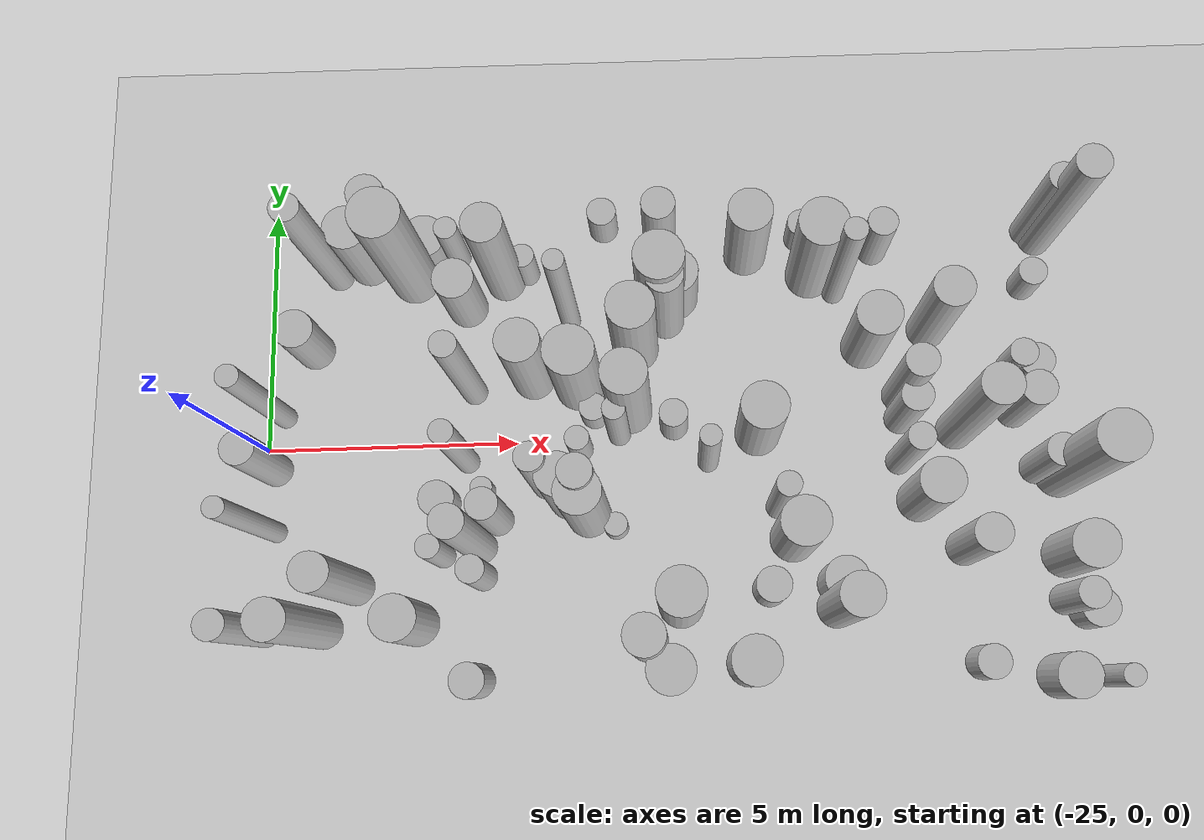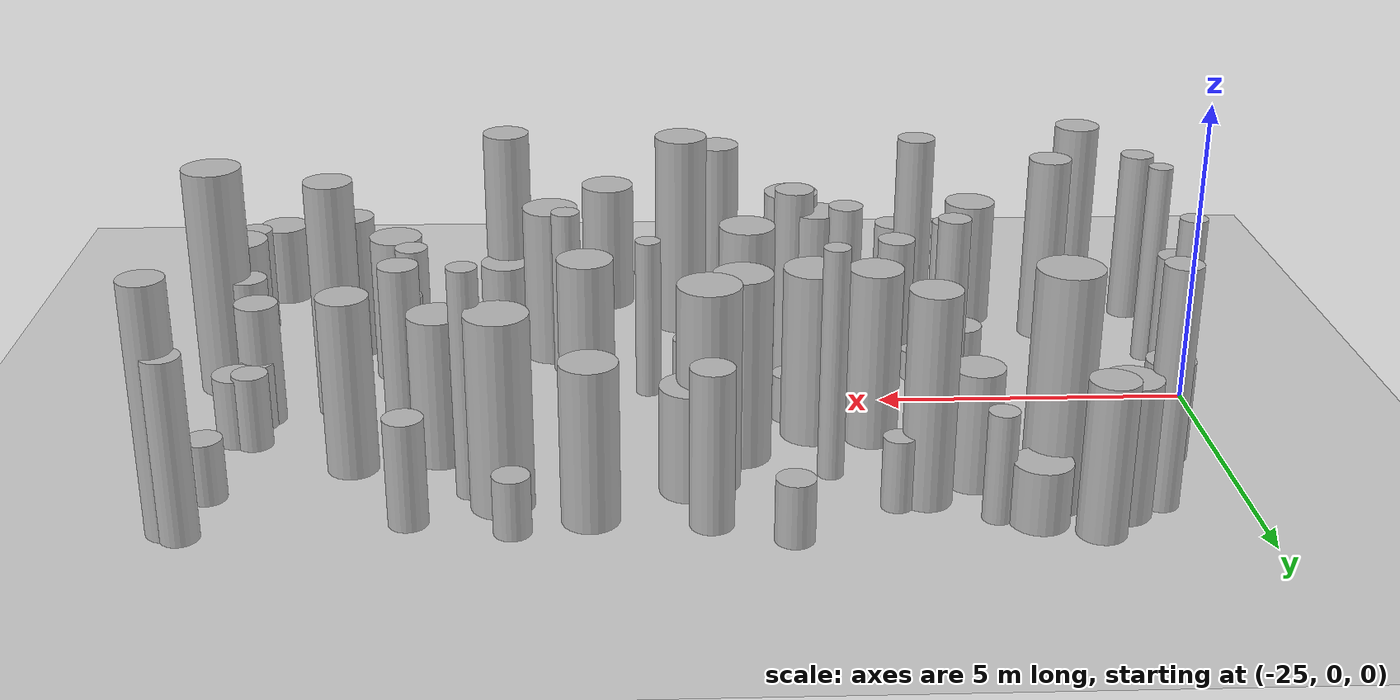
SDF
<sdf version="1.4">
 <world name="default">
  <include><uri>model://ground_plane</uri></include>
  <include><uri>model://sun</uri></include>
  <model name="forest">
   <static>true</static>
   <link name="cylinder0">
    <pose>-12.389913493122123 -0.6164857760160567 1.2789422149600733 0 0 0</pose>
    <visual name="visual">
     <geometry>
      <cylinder><radius>0.2640215659879026</radius><length>2.5578844299201466</length></cylinder>
     </geometry>
    </visual>
    <collision name="collision">
     <geometry>
      <cylinder><radius>0.2640215659879026</radius><length>2.5578844299201466</length></cylinder>
     </geometry>
     <max_contacts>0</max_contacts>
    </collision>
   </link>
   <link name="cylinder1">
    <pose>-8.918453066813743 -3.6858028048861415 0.4585606323043887 0 0 0</pose>
    <visual name="visual">
     <geometry>
      <cylinder><radius>0.37176183712964606</radius><length>0.9171212646087774</length></cylinder>
     </geometry>
    </visual>
    <collision name="collision">
     <geometry>
      <cylinder><radius>0.37176183712964606</radius><length>0.9171212646087774</length></cylinder>
     </geometry>
     <max_contacts>0</max_contacts>
    </collision>
   </link>
   <link name="cylinder2">
    <pose>-18.978339106760433 -1.155977682333047 1.4584447334064259 0 0 0</pose>
    <visual name="visual">
     <geometry>
      <cylinder><radius>0.41375714241988626</radius><length>2.9168894668128518</length></cylinder>
     </geometry>
    </visual>
    <collision name="collision">
     <geometry>
      <cylinder><radius>0.41375714241988626</radius><length>2.9168894668128518</length></cylinder>
     </geometry>
     <max_contacts>0</max_contacts>
    </collision>
   </link>
   <link name="cylinder7">
    <pose>-16.761811264655652 2.964869043372569 0.8588262211649531 0 0 0</pose>
    <visual name="visual">
     <geometry>
      <cylinder><radius>0.46347730381025604</radius><length>1.7176524423299062</length></cylinder>
     </geometry>
    </visual>
    <collision name="collision">
     <geometry>
      <cylinder><radius>0.46347730381025604</radius><length>1.7176524423299062</length></cylinder>
     </geometry>
     <max_contacts>0</max_contacts>
    </collision>
   </link>
   <link name="cylinder8">
    <pose>-9.667703603242755 -0.8389615528529255 0.9886777490439089 0 0 0</pose>
    <visual name="visual">
     <geometry>
      <cylinder><radius>0.3212503952877882</radius><length>1.9773554980878179</length></cylinder>
     </geometry>
    </visual>
    <collision name="collision">
     <geometry>
      <cylinder><radius>0.3212503952877882</radius><length>1.9773554980878179</length></cylinder>
     </geometry>
     <max_contacts>0</max_contacts>
    </collision>
   </link>
   <link name="cylinder9">
    <pose>-23.665607546349648 3.6394062842845454 1.9011852466170696 0 0 0</pose>
    <visual name="visual">
     <geometry>
      <cylinder><radius>0.28236321037003426</radius><length>3.802370493234139</length></cylinder>
     </geometry>
    </visual>
    <collision name="collision">
     <geometry>
      <cylinder><radius>0.28236321037003426</radius><length>3.802370493234139</length></cylinder>
     </geometry>
     <max_contacts>0</max_contacts>
    </collision>
   </link>
   <link name="cylinder10">
    <pose>-21.005215314367547 -0.3415815577288628 1.4994202685417108 0 0 0</pose>
    <visual name="visual">
     <geometry>
      <cylinder><radius>0.23004852379547625</radius><length>2.9988405370834217</length></cylinder>
     </geometry>
    </visual>
    <collision name="collision">
     <geometry>
      <cylinder><radius>0.23004852379547625</radius><length>2.9988405370834217</length></cylinder>
     </geometry>
     <max_contacts>0</max_contacts>
    </collision>
   </link>
   <link name="cylinder12">
    <pose>-17.061415783212418 -4.5929543059022855 1.036291618223426 0 0 0</pose>
    <visual name="visual">
     <geometry>
      <cylinder><radius>0.4613177867696143</radius><length>2.072583236446852</length></cylinder>
     </geometry>
    </visual>
    <collision name="collision">
     <geometry>
      <cylinder><radius>0.4613177867696143</radius><length>2.072583236446852</length></cylinder>
     </geometry>
     <max_contacts>0</max_contacts>
    </collision>
   </link>
   <link name="cylinder15">
    <pose>-21.503227747067015 -1.1797395255265641 0.41484440350514384 0 0 0</pose>
    <visual name="visual">
     <geometry>
      <cylinder><radius>0.35250127038315193</radius><length>0.8296888070102877</length></cylinder>
     </geometry>
    </visual>
    <collision name="collision">
     <geometry>
      <cylinder><radius>0.35250127038315193</radius><length>0.8296888070102877</length></cylinder>
     </geometry>
     <max_contacts>0</max_contacts>
    </collision>
   </link>
   <link name="cylinder25">
    <pose>-21.779436015058096 4.115555588904252 0.491929286126674 0 0 0</pose>
    <visual name="visual">
     <geometry>
      <cylinder><radius>0.4418668476225953</radius><length>0.983858572253348</length></cylinder>
     </geometry>
    </visual>
    <collision name="collision">
     <geometry>
      <cylinder><radius>0.4418668476225953</radius><length>0.983858572253348</length></cylinder>
     </geometry>
     <max_contacts>0</max_contacts>
    </collision>
   </link>
   <link name="cylinder26">
    <pose>-18.742497188077866 -0.1580609581002843 0.5917921316678002 0 0 0</pose>
    <visual name="visual">
     <geometry>
      <cylinder><radius>0.2432426239660913</radius><length>1.1835842633356004</length></cylinder>
     </geometry>
    </visual>
    <collision name="collision">
     <geometry>
      <cylinder><radius>0.2432426239660913</radius><length>1.1835842633356004</length></cylinder>
     </geometry>
     <max_contacts>0</max_contacts>
    </collision>
   </link>
   <link name="cylinder30">
    <pose>-9.5906438474116 -4.92725049409366 0.6952648383239067 0 0 0</pose>
    <visual name="visual">
     <geometry>
      <cylinder><radius>0.4296117749040066</radius><length>1.3905296766478135</length></cylinder>
     </geometry>
    </visual>
    <collision name="collision">
     <geometry>
      <cylinder><radius>0.4296117749040066</radius><length>1.3905296766478135</length></cylinder>
     </geometry>
     <max_contacts>0</max_contacts>
    </collision>
   </link>
   <link name="cylinder34">
    <pose>-20.23513384234424 3.4125626318916957 1.6848206293768455 0 0 0</pose>
    <visual name="visual">
     <geometry>
      <cylinder><radius>0.3905785535304223</radius><length>3.369641258753691</length></cylinder>
     </geometry>
    </visual>
    <collision name="collision">
     <geometry>
      <cylinder><radius>0.3905785535304223</radius><length>3.369641258753691</length></cylinder>
     </geometry>
     <max_contacts>0</max_contacts>
    </collision>
   </link>
   <link name="cylinder36">
    <pose>-9.331027541366948 -3.4661809195663063 0.9193993759060639 0 0 0</pose>
    <visual name="visual">
     <geometry>
      <cylinder><radius>0.3020906780574557</radius><length>1.8387987518121278</length></cylinder>
     </geometry>
    </visual>
    <collision name="collision">
     <geometry>
      <cylinder><radius>0.3020906780574557</radius><length>1.8387987518121278</length></cylinder>
     </geometry>
     <max_contacts>0</max_contacts>
    </collision>
   </link>
   <link name="cylinder40">
    <pose>-18.599666781171827 -1.5019799856270377 1.5660669158370695 0 0 0</pose>
    <visual name="visual">
     <geometry>
      <cylinder><radius>0.44107084303791805</radius><length>3.132133831674139</length></cylinder>
     </geometry>
    </visual>
    <collision name="collision">
     <geometry>
      <cylinder><radius>0.44107084303791805</radius><length>3.132133831674139</length></cylinder>
     </geometry>
     <max_contacts>0</max_contacts>
    </collision>
   </link>
   <link name="cylinder44">
    <pose>-13.990156403138032 3.3505663086298014 1.5324832089418257 0 0 0</pose>
    <visual name="visual">
     <geometry>
      <cylinder><radius>0.4783362634145502</radius><length>3.0649664178836513</length></cylinder>
     </geometry>
    </visual>
    <collision name="collision">
     <geometry>
      <cylinder><radius>0.4783362634145502</radius><length>3.0649664178836513</length></cylinder>
     </geometry>
     <max_contacts>0</max_contacts>
    </collision>
   </link>
   <link name="cylinder45">
    <pose>-9.241455031519507 3.98643197940304 1.9590375152031578 0 0 0</pose>
    <visual name="visual">
     <geometry>
      <cylinder><radius>0.3376911724527055</radius><length>3.9180750304063157</length></cylinder>
     </geometry>
    </visual>
    <collision name="collision">
     <geometry>
      <cylinder><radius>0.3376911724527055</radius><length>3.9180750304063157</length></cylinder>
     </geometry>
     <max_contacts>0</max_contacts>
    </collision>
   </link>
   <link name="cylinder47">
    <pose>-23.813632729153195 -3.5745698049681685 1.7897251551725513 0 0 0</pose>
    <visual name="visual">
     <geometry>
      <cylinder><radius>0.37790018455302027</radius><length>3.5794503103451025</length></cylinder>
     </geometry>
    </visual>
    <collision name="collision">
     <geometry>
      <cylinder><radius>0.37790018455302027</radius><length>3.5794503103451025</length></cylinder>
     </geometry>
     <max_contacts>0</max_contacts>
    </collision>
   </link>
   <link name="cylinder48">
    <pose>-18.751007569529488 1.1397680272205015 1.408767534734153 0 0 0</pose>
    <visual name="visual">
     <geometry>
      <cylinder><radius>0.4893086770583015</radius><length>2.817535069468306</length></cylinder>
     </geometry>
    </visual>
    <collision name="collision">
     <geometry>
      <cylinder><radius>0.4893086770583015</radius><length>2.817535069468306</length></cylinder>
     </geometry>
     <max_contacts>0</max_contacts>
    </collision>
   </link>
   <link name="cylinder51">
    <pose>-18.627392296456655 -1.1775298522866207 1.6448311978323424 0 0 0</pose>
    <visual name="visual">
     <geometry>
      <cylinder><radius>0.3240482186157975</radius><length>3.289662395664685</length></cylinder>
     </geometry>
    </visual>
    <collision name="collision">
     <geometry>
      <cylinder><radius>0.3240482186157975</radius><length>3.289662395664685</length></cylinder>
     </geometry>
     <max_contacts>0</max_contacts>
    </collision>
   </link>
   <link name="cylinder59">
    <pose>-18.447583648574795 0.5410527574651125 0.3898114863726291 0 0 0</pose>
    <visual name="visual">
     <geometry>
      <cylinder><radius>0.2815132785927279</radius><length>0.7796229727452582</length></cylinder>
     </geometry>
    </visual>
    <collision name="collision">
     <geometry>
      <cylinder><radius>0.2815132785927279</radius><length>0.7796229727452582</length></cylinder>
     </geometry>
     <max_contacts>0</max_contacts>
    </collision>
   </link>
   <link name="cylinder62">
    <pose>-10.014591206246791 0.34362689399675084 1.0119945949591194 0 0 0</pose>
    <visual name="visual">
     <geometry>
      <cylinder><radius>0.34261399047036256</radius><length>2.0239891899182387</length></cylinder>
     </geometry>
    </visual>
    <collision name="collision">
     <geometry>
      <cylinder><radius>0.34261399047036256</radius><length>2.0239891899182387</length></cylinder>
     </geometry>
     <max_contacts>0</max_contacts>
    </collision>
   </link>
   <link name="cylinder63">
    <pose>-17.050070490331038 2.754622565069349 1.6094043688284676 0 0 0</pose>
    <visual name="visual">
     <geometry>
      <cylinder><radius>0.4843710857543946</radius><length>3.218808737656935</length></cylinder>
     </geometry>
    </visual>
    <collision name="collision">
     <geometry>
      <cylinder><radius>0.4843710857543946</radius><length>3.218808737656935</length></cylinder>
     </geometry>
     <max_contacts>0</max_contacts>
    </collision>
   </link>
   <link name="cylinder64">
    <pose>-18.91274499381118 2.5448361576163467 1.8453397021543532 0 0 0</pose>
    <visual name="visual">
     <geometry>
      <cylinder><radius>0.202912345821084</radius><length>3.6906794043087063</length></cylinder>
     </geometry>
    </visual>
    <collision name="collision">
     <geometry>
      <cylinder><radius>0.202912345821084</radius><length>3.6906794043087063</length></cylinder>
     </geometry>
     <max_contacts>0</max_contacts>
    </collision>
   </link>
   <link name="cylinder66">
    <pose>-9.741574770871807 1.1029626674739523 0.5774175398298544 0 0 0</pose>
    <visual name="visual">
     <geometry>
      <cylinder><radius>0.34965548821532144</radius><length>1.1548350796597089</length></cylinder>
     </geometry>
    </visual>
    <collision name="collision">
     <geometry>
      <cylinder><radius>0.34965548821532144</radius><length>1.1548350796597089</length></cylinder>
     </geometry>
     <max_contacts>0</max_contacts>
    </collision>
   </link>
   <link name="cylinder72">
    <pose>-18.06195932043643 -1.763841210127942 0.2832955071213952 0 0 0</pose>
    <visual name="visual">
     <geometry>
      <cylinder><radius>0.23667020677883968</radius><length>0.5665910142427903</length></cylinder>
     </geometry>
    </visual>
    <collision name="collision">
     <geometry>
      <cylinder><radius>0.23667020677883968</radius><length>0.5665910142427903</length></cylinder>
     </geometry>
     <max_contacts>0</max_contacts>
    </collision>
   </link>
   <link name="cylinder73">
    <pose>-20.80408796542286 -4.6534139892818605 0.6997406246825335 0 0 0</pose>
    <visual name="visual">
     <geometry>
      <cylinder><radius>0.3352127121600865</radius><length>1.399481249365067</length></cylinder>
     </geometry>
    </visual>
    <collision name="collision">
     <geometry>
      <cylinder><radius>0.3352127121600865</radius><length>1.399481249365067</length></cylinder>
     </geometry>
     <max_contacts>0</max_contacts>
    </collision>
   </link>
   <link name="cylinder74">
    <pose>-11.044432887734168 -4.625905560917079 0.5063726596747875 0 0 0</pose>
    <visual name="visual">
     <geometry>
      <cylinder><radius>0.3305488003278912</radius><length>1.012745319349575</length></cylinder>
     </geometry>
    </visual>
    <collision name="collision">
     <geometry>
      <cylinder><radius>0.3305488003278912</radius><length>1.012745319349575</length></cylinder>
     </geometry>
     <max_contacts>0</max_contacts>
    </collision>
   </link>
   <link name="cylinder79">
    <pose>-11.219268246103598 -0.016604221676278286 1.954229122500143 0 0 0</pose>
    <visual name="visual">
     <geometry>
      <cylinder><radius>0.38682470265564367</radius><length>3.908458245000286</length></cylinder>
     </geometry>
    </visual>
    <collision name="collision">
     <geometry>
      <cylinder><radius>0.38682470265564367</radius><length>3.908458245000286</length></cylinder>
     </geometry>
     <max_contacts>0</max_contacts>
    </collision>
   </link>
   <link name="cylinder80">
    <pose>-15.539824815004266 -4.48462235163303 1.1319483732159765 0 0 0</pose>
    <visual name="visual">
     <geometry>
      <cylinder><radius>0.4620812686708832</radius><length>2.263896746431953</length></cylinder>
     </geometry>
    </visual>
    <collision name="collision">
     <geometry>
      <cylinder><radius>0.4620812686708832</radius><length>2.263896746431953</length></cylinder>
     </geometry>
     <max_contacts>0</max_contacts>
    </collision>
   </link>
   <link name="cylinder82">
    <pose>-11.223384397252717 -2.387317778088386 1.2332614786788882 0 0 0</pose>
    <visual name="visual">
     <geometry>
      <cylinder><radius>0.3580137096092616</radius><length>2.4665229573577765</length></cylinder>
     </geometry>
    </visual>
    <collision name="collision">
     <geometry>
      <cylinder><radius>0.3580137096092616</radius><length>2.4665229573577765</length></cylinder>
     </geometry>
     <max_contacts>0</max_contacts>
    </collision>
   </link>
   <link name="cylinder88">
    <pose>-16.834322077344794 -3.3356405022034785 1.7658164591394727 0 0 0</pose>
    <visual name="visual">
     <geometry>
      <cylinder><radius>0.4456423610995147</radius><length>3.5316329182789454</length></cylinder>
     </geometry>
    </visual>
    <collision name="collision">
     <geometry>
      <cylinder><radius>0.4456423610995147</radius><length>3.5316329182789454</length></cylinder>
     </geometry>
     <max_contacts>0</max_contacts>
    </collision>
   </link>
   <link name="cylinder90">
    <pose>-11.646165178721102 2.101917380404873 1.4219258324744182 0 0 0</pose>
    <visual name="visual">
     <geometry>
      <cylinder><radius>0.39653035291882005</radius><length>2.8438516649488363</length></cylinder>
     </geometry>
    </visual>
    <collision name="collision">
     <geometry>
      <cylinder><radius>0.39653035291882005</radius><length>2.8438516649488363</length></cylinder>
     </geometry>
     <max_contacts>0</max_contacts>
    </collision>
   </link>
   <link name="cylinder103">
    <pose>-16.965795445407483 2.471064937426103 1.4862025501083211 0 0 0</pose>
    <visual name="visual">
     <geometry>
      <cylinder><radius>0.3699369237325959</radius><length>2.9724051002166423</length></cylinder>
     </geometry>
    </visual>
    <collision name="collision">
     <geometry>
      <cylinder><radius>0.3699369237325959</radius><length>2.9724051002166423</length></cylinder>
     </geometry>
     <max_contacts>0</max_contacts>
    </collision>
   </link>
   <link name="cylinder104">
    <pose>-12.968705064059522 1.7769551957202196 1.2016777135223666 0 0 0</pose>
    <visual name="visual">
     <geometry>
      <cylinder><radius>0.4437041012405922</radius><length>2.4033554270447333</length></cylinder>
     </geometry>
    </visual>
    <collision name="collision">
     <geometry>
      <cylinder><radius>0.4437041012405922</radius><length>2.4033554270447333</length></cylinder>
     </geometry>
     <max_contacts>0</max_contacts>
    </collision>
   </link>
   <link name="cylinder109">
    <pose>-19.441505796374496 -0.8657298365239825 1.5512174578221278 0 0 0</pose>
    <visual name="visual">
     <geometry>
      <cylinder><radius>0.2781428862315418</radius><length>3.1024349156442557</length></cylinder>
     </geometry>
    </visual>
    <collision name="collision">
     <geometry>
      <cylinder><radius>0.2781428862315418</radius><length>3.1024349156442557</length></cylinder>
     </geometry>
     <max_contacts>0</max_contacts>
    </collision>
   </link>
   <link name="cylinder113">
    <pose>-21.0147208001611 2.883100711656917 0.9573544270892063 0 0 0</pose>
    <visual name="visual">
     <geometry>
      <cylinder><radius>0.4052444135711494</radius><length>1.9147088541784125</length></cylinder>
     </geometry>
    </visual>
    <collision name="collision">
     <geometry>
      <cylinder><radius>0.4052444135711494</radius><length>1.9147088541784125</length></cylinder>
     </geometry>
     <max_contacts>0</max_contacts>
    </collision>
   </link>
   <link name="cylinder115">
    <pose>-23.035655059157804 3.881820405780319 1.0802041036693124 0 0 0</pose>
    <visual name="visual">
     <geometry>
      <cylinder><radius>0.4394247319923704</radius><length>2.160408207338625</length></cylinder>
     </geometry>
    </visual>
    <collision name="collision">
     <geometry>
      <cylinder><radius>0.4394247319923704</radius><length>2.160408207338625</length></cylinder>
     </geometry>
     <max_contacts>0</max_contacts>
    </collision>
   </link>
   <link name="cylinder116">
    <pose>-22.606865366553123 4.474034286949598 1.210309222903139 0 0 0</pose>
    <visual name="visual">
     <geometry>
      <cylinder><radius>0.3673536687134513</radius><length>2.420618445806278</length></cylinder>
     </geometry>
    </visual>
    <collision name="collision">
     <geometry>
      <cylinder><radius>0.3673536687134513</radius><length>2.420618445806278</length></cylinder>
     </geometry>
     <max_contacts>0</max_contacts>
    </collision>
   </link>
   <link name="cylinder117">
    <pose>-12.052445693649517 -1.4142091464480746 1.227952177928778 0 0 0</pose>
    <visual name="visual">
     <geometry>
      <cylinder><radius>0.4318581253594893</radius><length>2.455904355857556</length></cylinder>
     </geometry>
    </visual>
    <collision name="collision">
     <geometry>
      <cylinder><radius>0.4318581253594893</radius><length>2.455904355857556</length></cylinder>
     </geometry>
     <max_contacts>0</max_contacts>
    </collision>
   </link>
   <link name="cylinder128">
    <pose>-9.250960350488825 -2.59107277137675 0.9939334622758635 0 0 0</pose>
    <visual name="visual">
     <geometry>
      <cylinder><radius>0.4569459669410907</radius><length>1.987866924551727</length></cylinder>
     </geometry>
    </visual>
    <collision name="collision">
     <geometry>
      <cylinder><radius>0.4569459669410907</radius><length>1.987866924551727</length></cylinder>
     </geometry>
     <max_contacts>0</max_contacts>
    </collision>
   </link>
   <link name="cylinder130">
    <pose>-14.857657598100216 -1.4540575556755089 1.4192411220659331 0 0 0</pose>
    <visual name="visual">
     <geometry>
      <cylinder><radius>0.2360948545234594</radius><length>2.8384822441318662</length></cylinder>
     </geometry>
    </visual>
    <collision name="collision">
     <geometry>
      <cylinder><radius>0.2360948545234594</radius><length>2.8384822441318662</length></cylinder>
     </geometry>
     <max_contacts>0</max_contacts>
    </collision>
   </link>
   <link name="cylinder137">
    <pose>-14.17161205914972 4.173816115708771 0.4638492065012867 0 0 0</pose>
    <visual name="visual">
     <geometry>
      <cylinder><radius>0.2813624129637614</radius><length>0.9276984130025734</length></cylinder>
     </geometry>
    </visual>
    <collision name="collision">
     <geometry>
      <cylinder><radius>0.2813624129637614</radius><length>0.9276984130025734</length></cylinder>
     </geometry>
     <max_contacts>0</max_contacts>
    </collision>
   </link>
   <link name="cylinder139">
    <pose>-9.224220602139521 -0.9717638965848332 1.9153984395695636 0 0 0</pose>
    <visual name="visual">
     <geometry>
      <cylinder><radius>0.4768789219476684</radius><length>3.830796879139127</length></cylinder>
     </geometry>
    </visual>
    <collision name="collision">
     <geometry>
      <cylinder><radius>0.4768789219476684</radius><length>3.830796879139127</length></cylinder>
     </geometry>
     <max_contacts>0</max_contacts>
    </collision>
   </link>
   <link name="cylinder143">
    <pose>-9.433195891501867 4.175496616868935 1.4233866035124607 0 0 0</pose>
    <visual name="visual">
     <geometry>
      <cylinder><radius>0.2902574676316665</radius><length>2.8467732070249214</length></cylinder>
     </geometry>
    </visual>
    <collision name="collision">
     <geometry>
      <cylinder><radius>0.2902574676316665</radius><length>2.8467732070249214</length></cylinder>
     </geometry>
     <max_contacts>0</max_contacts>
    </collision>
   </link>
   <link name="cylinder145">
    <pose>-16.87013638692208 0.253570275786692 0.6358147554653089 0 0 0</pose>
    <visual name="visual">
     <geometry>
      <cylinder><radius>0.2805206034430373</radius><length>1.2716295109306177</length></cylinder>
     </geometry>
    </visual>
    <collision name="collision">
     <geometry>
      <cylinder><radius>0.2805206034430373</radius><length>1.2716295109306177</length></cylinder>
     </geometry>
     <max_contacts>0</max_contacts>
    </collision>
   </link>
   <link name="cylinder146">
    <pose>-12.321681390991813 0.7423046883727915 1.3964896602441736 0 0 0</pose>
    <visual name="visual">
     <geometry>
      <cylinder><radius>0.32238700773502466</radius><length>2.7929793204883473</length></cylinder>
     </geometry>
    </visual>
    <collision name="collision">
     <geometry>
      <cylinder><radius>0.32238700773502466</radius><length>2.7929793204883473</length></cylinder>
     </geometry>
     <max_contacts>0</max_contacts>
    </collision>
   </link>
   <link name="cylinder149">
    <pose>-17.967065099946755 0.11395166880553997 1.2149423152374044 0 0 0</pose>
    <visual name="visual">
     <geometry>
      <cylinder><radius>0.22222432731580732</radius><length>2.4298846304748087</length></cylinder>
     </geometry>
    </visual>
    <collision name="collision">
     <geometry>
      <cylinder><radius>0.22222432731580732</radius><length>2.4298846304748087</length></cylinder>
     </geometry>
     <max_contacts>0</max_contacts>
    </collision>
   </link>
   <link name="cylinder153">
    <pose>-24.940822877006003 -3.595272498156544 1.511399063710475 0 0 0</pose>
    <visual name="visual">
     <geometry><cylinder><radius>0.2852187893911683</radius><length>3.02279812742095</length></cylinder></geometry>
    </visual>
    <collision name="collision">
     <geometry><cylinder><radius>0.2852187893911683</radius><length>3.02279812742095</length></cylinder></geometry>
     <max_contacts>0</max_contacts>
    </collision>
   </link>
   <link name="cylinder154">
    <pose>-13.736071211562079 -3.01624410489418 0.6736725265880927 0 0 0</pose>
    <visual name="visual">
     <geometry>
      <cylinder><radius>0.4227958617475504</radius><length>1.3473450531761855</length></cylinder>
     </geometry>
    </visual>
    <collision name="collision">
     <geometry>
      <cylinder><radius>0.4227958617475504</radius><length>1.3473450531761855</length></cylinder>
     </geometry>
     <max_contacts>0</max_contacts>
    </collision>
   </link>
   <link name="cylinder157">
    <pose>-15.091393991561214 -3.0811230414710398 0.6262978313590453 0 0 0</pose>
    <visual name="visual">
     <geometry>
      <cylinder><radius>0.3443595335022862</radius><length>1.2525956627180905</length></cylinder>
     </geometry>
    </visual>
    <collision name="collision">
     <geometry>
      <cylinder><radius>0.3443595335022862</radius><length>1.2525956627180905</length></cylinder>
     </geometry>
     <max_contacts>0</max_contacts>
    </collision>
   </link>
   <link name="cylinder160">
    <pose>-13.503968658242671 2.9671168230401026 1.8121675642742765 0 0 0</pose>
    <visual name="visual">
     <geometry>
      <cylinder><radius>0.22636336855232386</radius><length>3.624335128548553</length></cylinder>
     </geometry>
    </visual>
    <collision name="collision">
     <geometry>
      <cylinder><radius>0.22636336855232386</radius><length>3.624335128548553</length></cylinder>
     </geometry>
     <max_contacts>0</max_contacts>
    </collision>
   </link>
   <link name="cylinder162">
    <pose>-12.313949964215997 0.2636679582899486 1.0390709354253778 0 0 0</pose>
    <visual name="visual">
     <geometry>
      <cylinder><radius>0.3138957120043753</radius><length>2.0781418708507555</length></cylinder>
     </geometry>
    </visual>
    <collision name="collision">
     <geometry>
      <cylinder><radius>0.3138957120043753</radius><length>2.0781418708507555</length></cylinder>
     </geometry>
     <max_contacts>0</max_contacts>
    </collision>
   </link>
   <link name="cylinder163">
    <pose>-10.00695273988239 1.2505219100232656 0.6133802620961929 0 0 0</pose>
    <visual name="visual">
     <geometry>
      <cylinder><radius>0.28313462938157463</radius><length>1.2267605241923858</length></cylinder>
     </geometry>
    </visual>
    <collision name="collision">
     <geometry>
      <cylinder><radius>0.28313462938157463</radius><length>1.2267605241923858</length></cylinder>
     </geometry>
     <max_contacts>0</max_contacts>
    </collision>
   </link>
   <link name="cylinder167">
    <pose>-20.73703159383496 -2.068726138133364 1.9310284386761447 0 0 0</pose>
    <visual name="visual">
     <geometry>
      <cylinder><radius>0.3120135258448693</radius><length>3.8620568773522894</length></cylinder>
     </geometry>
    </visual>
    <collision name="collision">
     <geometry>
      <cylinder><radius>0.3120135258448693</radius><length>3.8620568773522894</length></cylinder>
     </geometry>
     <max_contacts>0</max_contacts>
    </collision>
   </link>
   <link name="cylinder168">
    <pose>-19.67237570696622 1.330540991304333 1.4377234686984632 0 0 0</pose>
    <visual name="visual">
     <geometry>
      <cylinder><radius>0.42440399231412196</radius><length>2.8754469373969265</length></cylinder>
     </geometry>
    </visual>
    <collision name="collision">
     <geometry>
      <cylinder><radius>0.42440399231412196</radius><length>2.8754469373969265</length></cylinder>
     </geometry>
     <max_contacts>0</max_contacts>
    </collision>
   </link>
   <link name="cylinder172">
    <pose>-17.73538984044839 0.5709575038125037 1.6565390714856174 0 0 0</pose>
    <visual name="visual">
     <geometry>
      <cylinder><radius>0.43731454086745414</radius><length>3.313078142971235</length></cylinder>
     </geometry>
    </visual>
    <collision name="collision">
     <geometry>
      <cylinder><radius>0.43731454086745414</radius><length>3.313078142971235</length></cylinder>
     </geometry>
     <max_contacts>0</max_contacts>
    </collision>
   </link>
   <link name="cylinder173">
    <pose>-21.198202023573977 3.9828933838519234 0.8620214504483353 0 0 0</pose>
    <visual name="visual">
     <geometry>
      <cylinder><radius>0.22902644595867097</radius><length>1.7240429008966707</length></cylinder>
     </geometry>
    </visual>
    <collision name="collision">
     <geometry>
      <cylinder><radius>0.22902644595867097</radius><length>1.7240429008966707</length></cylinder>
     </geometry>
     <max_contacts>0</max_contacts>
    </collision>
   </link>
   <link name="cylinder176">
    <pose>-24.7921378039589 -1.6358907453296712 1.7260470245069401 0 0 0</pose>
    <visual name="visual">
     <geometry>
      <cylinder><radius>0.20131403377432863</radius><length>3.4520940490138803</length></cylinder>
     </geometry>
    </visual>
    <collision name="collision">
     <geometry>
      <cylinder><radius>0.20131403377432863</radius><length>3.4520940490138803</length></cylinder>
     </geometry>
     <max_contacts>0</max_contacts>
    </collision>
   </link>
   <link name="cylinder177">
    <pose>-20.700097476469907 -2.6532375736122127 0.8546379978789763 0 0 0</pose>
    <visual name="visual">
     <geometry>
      <cylinder><radius>0.27346922714453104</radius><length>1.7092759957579526</length></cylinder>
     </geometry>
    </visual>
    <collision name="collision">
     <geometry>
      <cylinder><radius>0.27346922714453104</radius><length>1.7092759957579526</length></cylinder>
     </geometry>
     <max_contacts>0</max_contacts>
    </collision>
   </link>
   <link name="cylinder178">
    <pose>-15.290609785035707 3.845770841555053 1.2578271485341403 0 0 0</pose>
    <visual name="visual">
     <geometry>
      <cylinder><radius>0.433144882828984</radius><length>2.5156542970682807</length></cylinder>
     </geometry>
    </visual>
    <collision name="collision">
     <geometry>
      <cylinder><radius>0.433144882828984</radius><length>2.5156542970682807</length></cylinder>
     </geometry>
     <max_contacts>0</max_contacts>
    </collision>
   </link>
   <link name="cylinder182">
    <pose>-9.606762801713991 2.982452867512471 0.4897928329010238 0 0 0</pose>
    <visual name="visual">
     <geometry>
      <cylinder><radius>0.2895668336359245</radius><length>0.9795856658020476</length></cylinder>
     </geometry>
    </visual>
    <collision name="collision">
     <geometry>
      <cylinder><radius>0.2895668336359245</radius><length>0.9795856658020476</length></cylinder>
     </geometry>
     <max_contacts>0</max_contacts>
    </collision>
   </link>
   <link name="cylinder185">
    <pose>-20.404522761299177 -1.5396423677147073 1.128480257688004 0 0 0</pose>
    <visual name="visual">
     <geometry>
      <cylinder><radius>0.30856697301046054</radius><length>2.256960515376008</length></cylinder>
     </geometry>
    </visual>
    <collision name="collision">
     <geometry>
      <cylinder><radius>0.30856697301046054</radius><length>2.256960515376008</length></cylinder>
     </geometry>
     <max_contacts>0</max_contacts>
    </collision>
   </link>
   <link name="cylinder188">
    <pose>-21.990933946873042 -3.5266793393615057 1.1019016047898502 0 0 0</pose>
    <visual name="visual">
     <geometry>
      <cylinder><radius>0.4330866298899611</radius><length>2.2038032095797004</length></cylinder>
     </geometry>
    </visual>
    <collision name="collision">
     <geometry>
      <cylinder><radius>0.4330866298899611</radius><length>2.2038032095797004</length></cylinder>
     </geometry>
     <max_contacts>0</max_contacts>
    </collision>
   </link>
   <link name="cylinder196">
    <pose>-15.196961028690293 0.04657708433865437 1.2930785624796566 0 0 0</pose>
    <visual name="visual">
     <geometry>
      <cylinder><radius>0.4548044820856223</radius><length>2.586157124959313</length></cylinder>
     </geometry>
    </visual>
    <collision name="collision">
     <geometry>
      <cylinder><radius>0.4548044820856223</radius><length>2.586157124959313</length></cylinder>
     </geometry>
     <max_contacts>0</max_contacts>
    </collision>
   </link>
   <link name="cylinder199">
    <pose>-16.208088324074858 -0.4978176707619433 1.3375059554710198 0 0 0</pose>
    <visual name="visual">
     <geometry>
      <cylinder><radius>0.2080684342543337</radius><length>2.6750119109420396</length></cylinder>
     </geometry>
    </visual>
    <collision name="collision">
     <geometry>
      <cylinder><radius>0.2080684342543337</radius><length>2.6750119109420396</length></cylinder>
     </geometry>
     <max_contacts>0</max_contacts>
    </collision>
   </link>
   <link name="cylinder200">
    <pose>-18.196758819021614 4.517930747305497 0.4949592513848714 0 0 0</pose>
    <visual name="visual">
     <geometry>
      <cylinder><radius>0.29482660366338165</radius><length>0.9899185027697428</length></cylinder>
     </geometry>
    </visual>
    <collision name="collision">
     <geometry>
      <cylinder><radius>0.29482660366338165</radius><length>0.9899185027697428</length></cylinder>
     </geometry>
     <max_contacts>0</max_contacts>
    </collision>
   </link>
   <link name="cylinder202">
    <pose>-17.49375084948639 -4.021624839907025 1.5766987355823059 0 0 0</pose>
    <visual name="visual">
     <geometry>
      <cylinder><radius>0.3897481156007104</radius><length>3.1533974711646118</length></cylinder>
     </geometry>
    </visual>
    <collision name="collision">
     <geometry>
      <cylinder><radius>0.3897481156007104</radius><length>3.1533974711646118</length></cylinder>
     </geometry>
     <max_contacts>0</max_contacts>
    </collision>
   </link>
   <link name="cylinder203">
    <pose>-24.840288860177886 -0.383090297356806 1.1725251030164754 0 0 0</pose>
    <visual name="visual">
     <geometry>
      <cylinder><radius>0.3274216233421395</radius><length>2.345050206032951</length></cylinder>
     </geometry>
    </visual>
    <collision name="collision">
     <geometry>
      <cylinder><radius>0.3274216233421395</radius><length>2.345050206032951</length></cylinder>
     </geometry>
     <max_contacts>0</max_contacts>
    </collision>
   </link>
   <link name="cylinder208">
    <pose>-22.10073118054175 3.5243008883113003 1.859602935450752 0 0 0</pose>
    <visual name="visual">
     <geometry><cylinder><radius>0.492010223178615</radius><length>3.719205870901504</length></cylinder></geometry>
    </visual>
    <collision name="collision">
     <geometry><cylinder><radius>0.492010223178615</radius><length>3.719205870901504</length></cylinder></geometry>
     <max_contacts>0</max_contacts>
    </collision>
   </link>
   <link name="cylinder213">
    <pose>-19.78402072747234 3.578974465492264 0.5708067473356147 0 0 0</pose>
    <visual name="visual">
     <geometry>
      <cylinder><radius>0.24300466601292992</radius><length>1.1416134946712293</length></cylinder>
     </geometry>
    </visual>
    <collision name="collision">
     <geometry>
      <cylinder><radius>0.24300466601292992</radius><length>1.1416134946712293</length></cylinder>
     </geometry>
     <max_contacts>0</max_contacts>
    </collision>
   </link>
   <link name="cylinder214">
    <pose>-24.12155697203317 2.070676621941022 0.8073811366879228 0 0 0</pose>
    <visual name="visual">
     <geometry>
      <cylinder><radius>0.38360097189184905</radius><length>1.6147622733758455</length></cylinder>
     </geometry>
    </visual>
    <collision name="collision">
     <geometry>
      <cylinder><radius>0.38360097189184905</radius><length>1.6147622733758455</length></cylinder>
     </geometry>
     <max_contacts>0</max_contacts>
    </collision>
   </link>
   <link name="cylinder216">
    <pose>-13.79852943536181 -3.4826326378638583 1.787332972795371 0 0 0</pose>
    <visual name="visual">
     <geometry>
      <cylinder><radius>0.3959649552988509</radius><length>3.574665945590742</length></cylinder>
     </geometry>
    </visual>
    <collision name="collision">
     <geometry>
      <cylinder><radius>0.3959649552988509</radius><length>3.574665945590742</length></cylinder>
     </geometry>
     <max_contacts>0</max_contacts>
    </collision>
   </link>
   <link name="cylinder217">
    <pose>-20.68313689341743 -0.9478712458936798 0.25196514907411255 0 0 0</pose>
    <visual name="visual">
     <geometry>
      <cylinder><radius>0.22143406362759838</radius><length>0.5039302981482251</length></cylinder>
     </geometry>
    </visual>
    <collision name="collision">
     <geometry>
      <cylinder><radius>0.22143406362759838</radius><length>0.5039302981482251</length></cylinder>
     </geometry>
     <max_contacts>0</max_contacts>
    </collision>
   </link>
   <link name="cylinder226">
    <pose>-20.87263006113939 1.0907523769081884 1.789234834440457 0 0 0</pose>
    <visual name="visual">
     <geometry>
      <cylinder><radius>0.25286475138247977</radius><length>3.578469668880914</length></cylinder>
     </geometry>
    </visual>
    <collision name="collision">
     <geometry>
      <cylinder><radius>0.25286475138247977</radius><length>3.578469668880914</length></cylinder>
     </geometry>
     <max_contacts>0</max_contacts>
    </collision>
   </link>
   <link name="cylinder227">
    <pose>-9.9993847709123 0.5483358206176048 0.5475419886112118 0 0 0</pose>
    <visual name="visual">
     <geometry>
      <cylinder><radius>0.26544133673941034</radius><length>1.0950839772224237</length></cylinder>
     </geometry>
    </visual>
    <collision name="collision">
     <geometry>
      <cylinder><radius>0.26544133673941034</radius><length>1.0950839772224237</length></cylinder>
     </geometry>
     <max_contacts>0</max_contacts>
    </collision>
   </link>
   <link name="cylinder228">
    <pose>-24.687302008406387 0.6920591124129336 1.6943015530211076 0 0 0</pose>
    <visual name="visual">
     <geometry>
      <cylinder><radius>0.2184223802835427</radius><length>3.3886031060422153</length></cylinder>
     </geometry>
    </visual>
    <collision name="collision">
     <geometry>
      <cylinder><radius>0.2184223802835427</radius><length>3.3886031060422153</length></cylinder>
     </geometry>
     <max_contacts>0</max_contacts>
    </collision>
   </link>
   <link name="cylinder229">
    <pose>-17.59591455294103 1.8798829792433178 1.518717307632613 0 0 0</pose>
    <visual name="visual">
     <geometry>
      <cylinder><radius>0.46117077619188795</radius><length>3.037434615265226</length></cylinder>
     </geometry>
    </visual>
    <collision name="collision">
     <geometry>
      <cylinder><radius>0.46117077619188795</radius><length>3.037434615265226</length></cylinder>
     </geometry>
     <max_contacts>0</max_contacts>
    </collision>
   </link>
   <link name="cylinder235">
    <pose>-12.651994725770493 3.850183378888987 0.8477593277504112 0 0 0</pose>
    <visual name="visual">
     <geometry>
      <cylinder><radius>0.29936499114376297</radius><length>1.6955186555008224</length></cylinder>
     </geometry>
    </visual>
    <collision name="collision">
     <geometry>
      <cylinder><radius>0.29936499114376297</radius><length>1.6955186555008224</length></cylinder>
     </geometry>
     <max_contacts>0</max_contacts>
    </collision>
   </link>
   <link name="cylinder237">
    <pose>-17.037501984851882 4.044663237326187 1.248501958139622 0 0 0</pose>
    <visual name="visual">
     <geometry>
      <cylinder><radius>0.32911046682345335</radius><length>2.497003916279244</length></cylinder>
     </geometry>
    </visual>
    <collision name="collision">
     <geometry>
      <cylinder><radius>0.32911046682345335</radius><length>2.497003916279244</length></cylinder>
     </geometry>
     <max_contacts>0</max_contacts>
    </collision>
   </link>
   <link name="cylinder238">
    <pose>-23.19655889146767 -2.7711638809867436 1.6193031475237882 0 0 0</pose>
    <visual name="visual">
     <geometry>
      <cylinder><radius>0.36145266649680974</radius><length>3.2386062950475765</length></cylinder>
     </geometry>
    </visual>
    <collision name="collision">
     <geometry>
      <cylinder><radius>0.36145266649680974</radius><length>3.2386062950475765</length></cylinder>
     </geometry>
     <max_contacts>0</max_contacts>
    </collision>
   </link>
   <link name="cylinder240">
    <pose>-14.582994931421943 -2.0984057204785076 1.3446510657692134 0 0 0</pose>
    <visual name="visual">
     <geometry>
      <cylinder><radius>0.4653220253175539</radius><length>2.689302131538427</length></cylinder>
     </geometry>
    </visual>
    <collision name="collision">
     <geometry>
      <cylinder><radius>0.4653220253175539</radius><length>2.689302131538427</length></cylinder>
     </geometry>
     <max_contacts>0</max_contacts>
    </collision>
   </link>
   <link name="cylinder243">
    <pose>-21.480325011002655 -2.2186172955538686 0.8580807436170657 0 0 0</pose>
    <visual name="visual">
     <geometry>
      <cylinder><radius>0.2328468946265661</radius><length>1.7161614872341313</length></cylinder>
     </geometry>
    </visual>
    <collision name="collision">
     <geometry>
      <cylinder><radius>0.2328468946265661</radius><length>1.7161614872341313</length></cylinder>
     </geometry>
     <max_contacts>0</max_contacts>
    </collision>
   </link>
   <link name="cylinder246">
    <pose>-8.639594059158117 -4.957309132546419 0.7448923016818664 0 0 0</pose>
    <visual name="visual">
     <geometry>
      <cylinder><radius>0.21411902946144604</radius><length>1.4897846033637328</length></cylinder>
     </geometry>
    </visual>
    <collision name="collision">
     <geometry>
      <cylinder><radius>0.21411902946144604</radius><length>1.4897846033637328</length></cylinder>
     </geometry>
     <max_contacts>0</max_contacts>
    </collision>
   </link>
  </model>
 </world>
</sdf>
